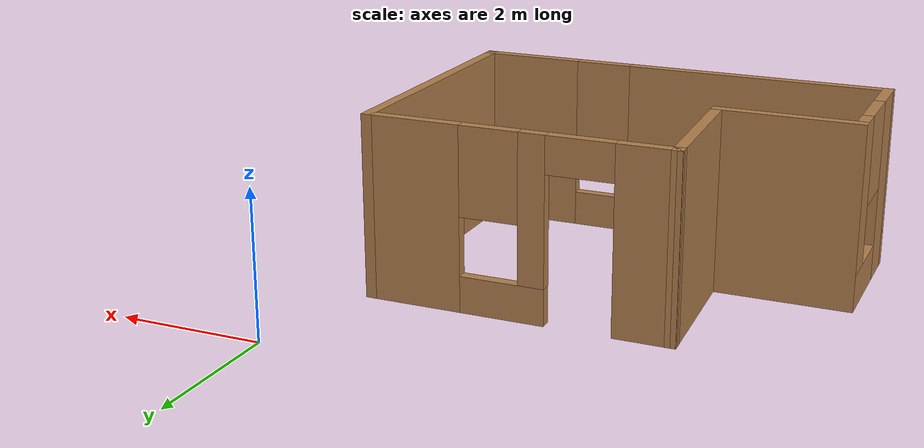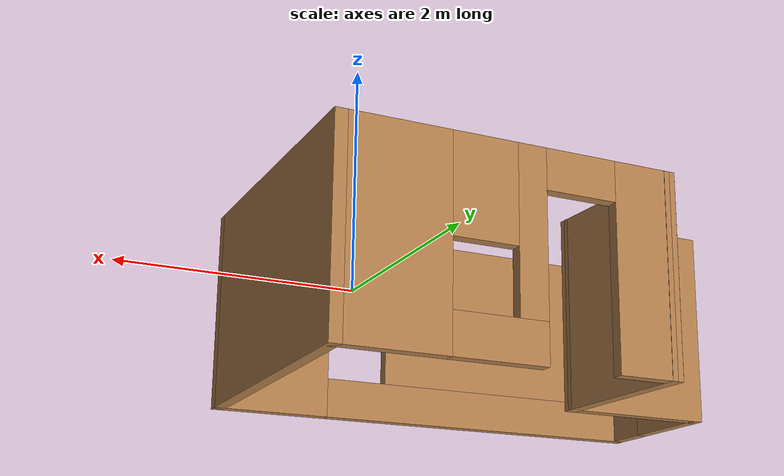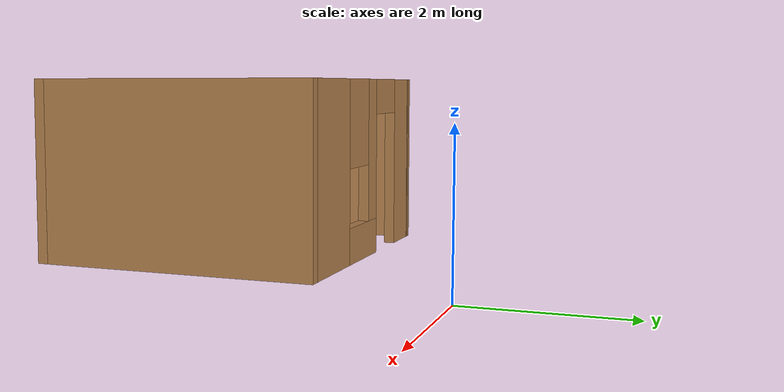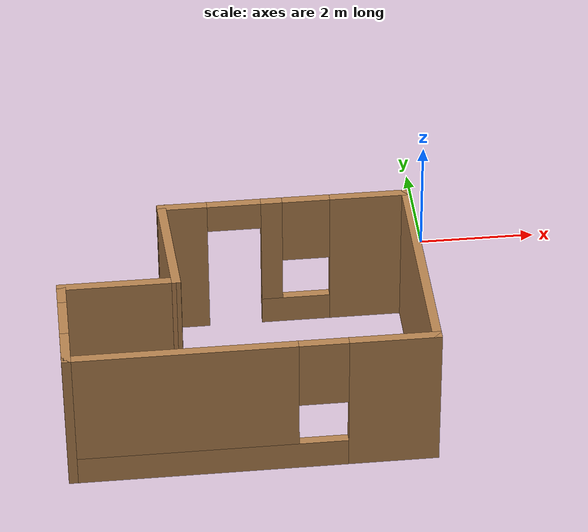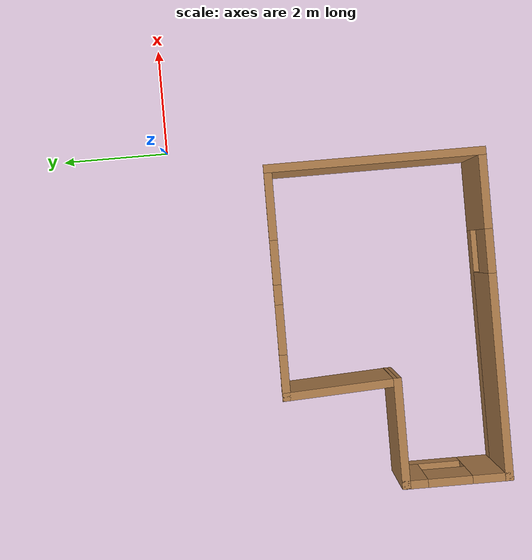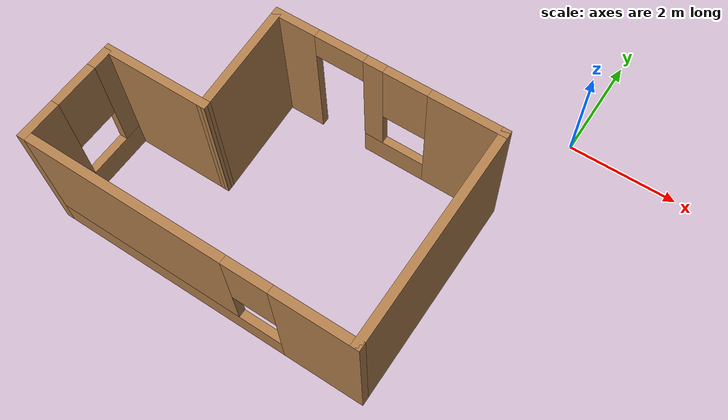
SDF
<?xml version='1.0'?>
<sdf version='1.6'>
  <model name='building'>
    <pose frame=''>-3.495 -3.83317 0 0 -0 0</pose>
    <link name='Wall_13'>
      <collision name='Wall_13_Collision'>
        <geometry>
          <box>
            <size>4 0.15 2.5</size>
          </box>
        </geometry>
        <pose frame=''>0 0 1.25 0 -0 0</pose>
      </collision>
      <visual name='Wall_13_Visual'>
        <pose frame=''>0 0 1.25 0 -0 0</pose>
        <geometry>
          <box>
            <size>4 0.15 2.5</size>
          </box>
        </geometry>
        <material>
          <script>
            <uri>file://media/materials/scripts/gazebo.material</uri>
            <name>Gazebo/Wood</name>
          </script>
          <ambient>1 1 1 1</ambient>
        </material>
        <meta>
          <layer>0</layer>
        </meta>
      </visual>
      <pose frame=''>2.925 -0.001826 0 0 0 -1.5708</pose>
    </link>
    <link name='Wall_14'>
      <pose frame=''>0 -1.92683 0 0 -0 3.14159</pose>
      <visual name='Wall_14_Visual_0'>
        <pose frame=''>-2.26208 0 1.25 0 -0 0</pose>
        <geometry>
          <box>
            <size>1.47584 0.15 2.5</size>
          </box>
        </geometry>
        <material>
          <script>
            <uri>file://media/materials/scripts/gazebo.material</uri>
            <name>Gazebo/Wood</name>
          </script>
          <ambient>1 1 1 1</ambient>
        </material>
        <meta>
          <layer>0</layer>
        </meta>
      </visual>
      <collision name='Wall_14_Collision_0'>
        <geometry>
          <box>
            <size>1.47584 0.15 2.5</size>
          </box>
        </geometry>
        <pose frame=''>-2.26208 0 1.25 0 -0 0</pose>
      </collision>
      <visual name='Wall_14_Visual_1'>
        <pose frame=''>0.737922 0 0.25 0 -0 0</pose>
        <geometry>
          <box>
            <size>4.52416 0.15 0.5</size>
          </box>
        </geometry>
        <material>
          <script>
            <uri>file://media/materials/scripts/gazebo.material</uri>
            <name>Gazebo/Wood</name>
          </script>
          <ambient>1 1 1 1</ambient>
        </material>
        <meta>
          <layer>0</layer>
        </meta>
      </visual>
      <collision name='Wall_14_Collision_1'>
        <geometry>
          <box>
            <size>4.52416 0.15 0.5</size>
          </box>
        </geometry>
        <pose frame=''>0.737922 0 0.25 0 -0 0</pose>
      </collision>
      <visual name='Wall_14_Visual_2'>
        <pose frame=''>1.13792 0 1.5 0 -0 0</pose>
        <geometry>
          <box>
            <size>3.72416 0.15 2</size>
          </box>
        </geometry>
        <material>
          <script>
            <uri>file://media/materials/scripts/gazebo.material</uri>
            <name>Gazebo/Wood</name>
          </script>
          <ambient>1 1 1 1</ambient>
        </material>
        <meta>
          <layer>0</layer>
        </meta>
      </visual>
      <collision name='Wall_14_Collision_2'>
        <geometry>
          <box>
            <size>3.72416 0.15 2</size>
          </box>
        </geometry>
        <pose frame=''>1.13792 0 1.5 0 -0 0</pose>
      </collision>
      <visual name='Wall_14_Visual_3'>
        <pose frame=''>-1.12416 0 1.9 0 -0 0</pose>
        <geometry>
          <box>
            <size>0.8 0.15 1.2</size>
          </box>
        </geometry>
        <material>
          <script>
            <uri>file://media/materials/scripts/gazebo.material</uri>
            <name>Gazebo/Wood</name>
          </script>
          <ambient>1 1 1 1</ambient>
        </material>
        <meta>
          <layer>0</layer>
        </meta>
      </visual>
      <collision name='Wall_14_Collision_3'>
        <geometry>
          <box>
            <size>0.8 0.15 1.2</size>
          </box>
        </geometry>
        <pose frame=''>-1.12416 0 1.9 0 -0 0</pose>
      </collision>
    </link>
    <link name='Wall_15'>
      <pose frame=''>-2.925 -1.00183 0 0 -0 1.5708</pose>
      <visual name='Wall_15_Visual_0'>
        <pose frame=''>-0.634091 0 1.25 0 -0 0</pose>
        <geometry>
          <box>
            <size>0.731818 0.15 2.5</size>
          </box>
        </geometry>
        <material>
          <script>
            <uri>file://media/materials/scripts/gazebo.material</uri>
            <name>Gazebo/Wood</name>
          </script>
          <ambient>1 1 1 1</ambient>
        </material>
        <meta>
          <layer>0</layer>
        </meta>
      </visual>
      <collision name='Wall_15_Collision_0'>
        <geometry>
          <box>
            <size>0.731818 0.15 2.5</size>
          </box>
        </geometry>
        <pose frame=''>-0.634091 0 1.25 0 -0 0</pose>
      </collision>
      <visual name='Wall_15_Visual_1'>
        <pose frame=''>0.365909 0 0.25 0 -0 0</pose>
        <geometry>
          <box>
            <size>1.26818 0.15 0.5</size>
          </box>
        </geometry>
        <material>
          <script>
            <uri>file://media/materials/scripts/gazebo.material</uri>
            <name>Gazebo/Wood</name>
          </script>
          <ambient>1 1 1 1</ambient>
        </material>
        <meta>
          <layer>0</layer>
        </meta>
      </visual>
      <collision name='Wall_15_Collision_1'>
        <geometry>
          <box>
            <size>1.26818 0.15 0.5</size>
          </box>
        </geometry>
        <pose frame=''>0.365909 0 0.25 0 -0 0</pose>
      </collision>
      <visual name='Wall_15_Visual_2'>
        <pose frame=''>0.765909 0 1.5 0 -0 0</pose>
        <geometry>
          <box>
            <size>0.468182 0.15 2</size>
          </box>
        </geometry>
        <material>
          <script>
            <uri>file://media/materials/scripts/gazebo.material</uri>
            <name>Gazebo/Wood</name>
          </script>
          <ambient>1 1 1 1</ambient>
        </material>
        <meta>
          <layer>0</layer>
        </meta>
      </visual>
      <collision name='Wall_15_Collision_2'>
        <geometry>
          <box>
            <size>0.468182 0.15 2</size>
          </box>
        </geometry>
        <pose frame=''>0.765909 0 1.5 0 -0 0</pose>
      </collision>
      <visual name='Wall_15_Visual_3'>
        <pose frame=''>0.131818 0 1.9 0 -0 0</pose>
        <geometry>
          <box>
            <size>0.8 0.15 1.2</size>
          </box>
        </geometry>
        <material>
          <script>
            <uri>file://media/materials/scripts/gazebo.material</uri>
            <name>Gazebo/Wood</name>
          </script>
          <ambient>1 1 1 1</ambient>
        </material>
        <meta>
          <layer>0</layer>
        </meta>
      </visual>
      <collision name='Wall_15_Collision_3'>
        <geometry>
          <box>
            <size>0.8 0.15 1.2</size>
          </box>
        </geometry>
        <pose frame=''>0.131818 0 1.9 0 -0 0</pose>
      </collision>
    </link>
    <link name='Wall_16'>
      <collision name='Wall_16_Collision'>
        <geometry>
          <box>
            <size>2 0.15 2.5</size>
          </box>
        </geometry>
        <pose frame=''>0 0 1.25 0 -0 0</pose>
      </collision>
      <visual name='Wall_16_Visual'>
        <pose frame=''>0 0 1.25 0 -0 0</pose>
        <geometry>
          <box>
            <size>2 0.15 2.5</size>
          </box>
        </geometry>
        <material>
          <script>
            <uri>file://media/materials/scripts/gazebo.material</uri>
            <name>Gazebo/Wood</name>
          </script>
          <ambient>0.921569 0.807843 0.615686 1</ambient>
        </material>
        <meta>
          <layer>0</layer>
        </meta>
      </visual>
      <pose frame=''>-2 -0.076826 0 0 -0 0</pose>
    </link>
    <link name='Wall_17'>
      <collision name='Wall_17_Collision'>
        <geometry>
          <box>
            <size>2.1525 0.15 2.5</size>
          </box>
        </geometry>
        <pose frame=''>0 0 1.25 0 -0 0</pose>
      </collision>
      <visual name='Wall_17_Visual'>
        <pose frame=''>0 0 1.25 0 -0 0</pose>
        <geometry>
          <box>
            <size>2.1525 0.15 2.5</size>
          </box>
        </geometry>
        <material>
          <script>
            <uri>file://media/materials/scripts/gazebo.material</uri>
            <name>Gazebo/Wood</name>
          </script>
          <ambient>1 1 1 1</ambient>
        </material>
        <meta>
          <layer>0</layer>
        </meta>
      </visual>
      <pose frame=''>-1.125 0.923174 0 0 -0 1.62075</pose>
    </link>
    <link name='Wall_6'>
      <pose frame=''>0.875 1.92317 0 0 -0 3.14159</pose>
      <visual name='Wall_6_Visual_0'>
        <pose frame=''>-1.44458 0 1.25 0 -0 0</pose>
        <geometry>
          <box>
            <size>1.36084 0.15 2.5</size>
          </box>
        </geometry>
        <material>
          <script>
            <uri>file://media/materials/scripts/gazebo.material</uri>
            <name>Gazebo/Wood</name>
          </script>
          <ambient>1 1 1 1</ambient>
        </material>
        <meta>
          <layer>0</layer>
        </meta>
      </visual>
      <collision name='Wall_6_Collision_0'>
        <geometry>
          <box>
            <size>1.36084 0.15 2.5</size>
          </box>
        </geometry>
        <pose frame=''>-1.44458 0 1.25 0 -0 0</pose>
      </collision>
      <visual name='Wall_6_Visual_1'>
        <pose frame=''>1.70917 0 1.25 0 -0 0</pose>
        <geometry>
          <box>
            <size>0.831657 0.15 2.5</size>
          </box>
        </geometry>
        <material>
          <script>
            <uri>file://media/materials/scripts/gazebo.material</uri>
            <name>Gazebo/Wood</name>
          </script>
          <ambient>1 1 1 1</ambient>
        </material>
        <meta>
          <layer>0</layer>
        </meta>
      </visual>
      <collision name='Wall_6_Collision_1'>
        <geometry>
          <box>
            <size>0.831657 0.15 2.5</size>
          </box>
        </geometry>
        <pose frame=''>1.70917 0 1.25 0 -0 0</pose>
      </collision>
      <visual name='Wall_6_Visual_2'>
        <pose frame=''>-0.185406 0 0.25 0 -0 0</pose>
        <geometry>
          <box>
            <size>1.1575 0.15 0.5</size>
          </box>
        </geometry>
        <material>
          <script>
            <uri>file://media/materials/scripts/gazebo.material</uri>
            <name>Gazebo/Wood</name>
          </script>
          <ambient>1 1 1 1</ambient>
        </material>
        <meta>
          <layer>0</layer>
        </meta>
      </visual>
      <collision name='Wall_6_Collision_2'>
        <geometry>
          <box>
            <size>1.1575 0.15 0.5</size>
          </box>
        </geometry>
        <pose frame=''>-0.185406 0 0.25 0 -0 0</pose>
      </collision>
      <visual name='Wall_6_Visual_3'>
        <pose frame=''>0.214594 0 1.5 0 -0 0</pose>
        <geometry>
          <box>
            <size>0.3575 0.15 2</size>
          </box>
        </geometry>
        <material>
          <script>
            <uri>file://media/materials/scripts/gazebo.material</uri>
            <name>Gazebo/Wood</name>
          </script>
          <ambient>1 1 1 1</ambient>
        </material>
        <meta>
          <layer>0</layer>
        </meta>
      </visual>
      <collision name='Wall_6_Collision_3'>
        <geometry>
          <box>
            <size>0.3575 0.15 2</size>
          </box>
        </geometry>
        <pose frame=''>0.214594 0 1.5 0 -0 0</pose>
      </collision>
      <visual name='Wall_6_Visual_4'>
        <pose frame=''>-0.364156 0 1.9 0 -0 0</pose>
        <geometry>
          <box>
            <size>0.8 0.15 1.2</size>
          </box>
        </geometry>
        <material>
          <script>
            <uri>file://media/materials/scripts/gazebo.material</uri>
            <name>Gazebo/Wood</name>
          </script>
          <ambient>1 1 1 1</ambient>
        </material>
        <meta>
          <layer>0</layer>
        </meta>
      </visual>
      <collision name='Wall_6_Collision_4'>
        <geometry>
          <box>
            <size>0.8 0.15 1.2</size>
          </box>
        </geometry>
        <pose frame=''>-0.364156 0 1.9 0 -0 0</pose>
      </collision>
      <visual name='Wall_6_Visual_5'>
        <pose frame=''>0.843343 0 2.25 0 -0 0</pose>
        <geometry>
          <box>
            <size>0.9 0.15 0.5</size>
          </box>
        </geometry>
        <material>
          <script>
            <uri>file://media/materials/scripts/gazebo.material</uri>
            <name>Gazebo/Wood</name>
          </script>
          <ambient>1 1 1 1</ambient>
        </material>
        <meta>
          <layer>0</layer>
        </meta>
      </visual>
      <collision name='Wall_6_Collision_5'>
        <geometry>
          <box>
            <size>0.9 0.15 0.5</size>
          </box>
        </geometry>
        <pose frame=''>0.843343 0 2.25 0 -0 0</pose>
      </collision>
    </link>
    <static>1</static>
  </model>
</sdf>
